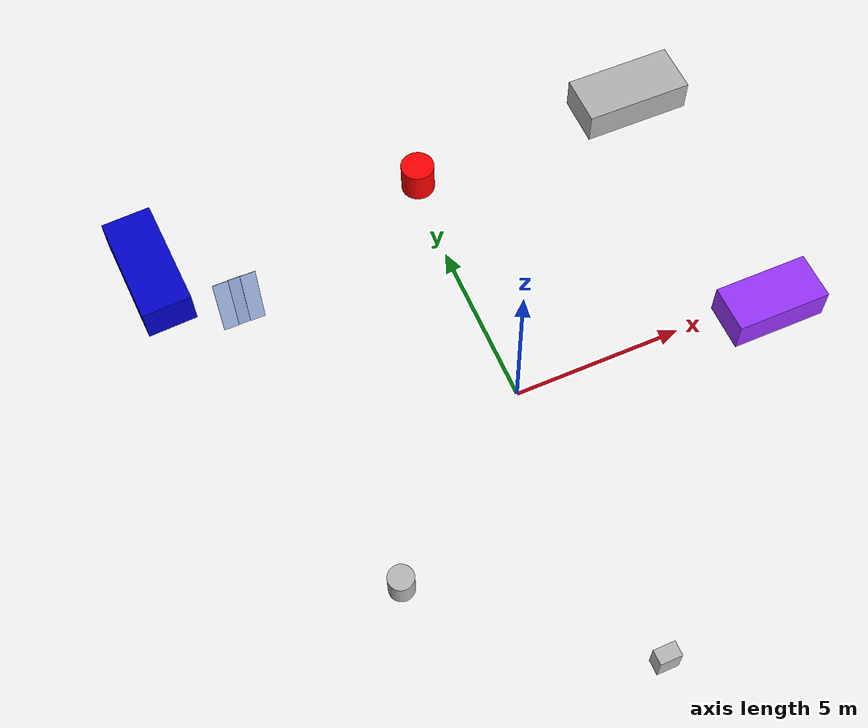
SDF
<?xml version="1.0" ?>
<sdf version="1.6">

  <model name="hospdecor">

    <!-- Static decoration -->
    <static>true</static>

    <!-- Lift model slightly -->
    <pose>0 0 0.5 0 0 0</pose>

    <!-- ================= BLOCK 1 ================= -->
    <link name="block_1">
      <pose>7.66 -0.43 0 0 0 0</pose>
      <visual name="visual">
        <geometry>
          <box><size>2.8 1.4 1</size></box>
        </geometry>
        <material>
          <ambient>0.6 0.2 1 1</ambient>
          <diffuse>0.6 0.2 1 1</diffuse>
        </material>
      </visual>
      <collision name="collision">
        <geometry>
          <box><size>2.8 1.4 1</size></box>
        </geometry>
      </collision>
    </link>

    <!-- ================= BLOCK 2 ================= -->
    <link name="block_2">
      <pose>-8.14 7.59 0 0 0 1.62</pose>
      <visual name="visual">
        <geometry>
          <box><size>3.4 1.45 1.1</size></box>
        </geometry>
        <material>
          <ambient>0 0 0.8 1</ambient>
          <diffuse>0 0 0.8 1</diffuse>
        </material>
      </visual>
      <collision name="collision">
        <geometry>
          <box><size>3.4 1.45 1.1</size></box>
        </geometry>
      </collision>
    </link>

    <!-- ================= BLOCK 3 ================= -->
    <link name="block_3">
      <pose>7.38 7.89 0 0 0 0</pose>
      <visual name="visual">
        <geometry>
          <box><size>3.3 1.56 1</size></box>
        </geometry>
        <material>
          <ambient>0.7 0.7 0.7 1</ambient>
          <diffuse>0.7 0.7 0.7 1</diffuse>
        </material>
      </visual>
      <collision name="collision">
        <geometry>
          <box><size>3.3 1.56 1</size></box>
        </geometry>
      </collision>
    </link>

    <!-- ================= RED CYLINDER ================= -->
    <link name="red_object">
      <pose>0.23 7.61 0 0 0 0</pose>
      <visual name="visual">
        <geometry>
          <cylinder>
            <radius>0.5</radius>
            <length>1</length>
          </cylinder>
        </geometry>
        <material>
          <ambient>1 0 0 1</ambient>
          <diffuse>1 0 0 1</diffuse>
        </material>
      </visual>
      <collision name="collision">
        <geometry>
          <cylinder>
            <radius>0.5</radius>
            <length>1</length>
          </cylinder>
        </geometry>
      </collision>
    </link>

    <!-- ================= MAILBOX ================= -->
    <link name="mailbox">
      <pose>0 -8.5 0.6 0 0 0</pose>
      <visual name="visual">
        <geometry>
          <box><size>0.6 0.4 0.8</size></box>
        </geometry>
      </visual>
      <collision name="collision">
        <geometry>
          <box><size>0.6 0.4 0.8</size></box>
        </geometry>
      </collision>
    </link>

    <!-- ================= TRASH CAN ================= -->
    <link name="trash_can">
      <pose>-5.15 -4.17 0.6 0 0 0</pose>
      <visual name="visual">
        <geometry>
          <cylinder>
            <radius>0.35</radius>
            <length>0.8</length>
          </cylinder>
        </geometry>
      </visual>
      <collision name="collision">
        <geometry>
          <cylinder>
            <radius>0.35</radius>
            <length>0.8</length>
          </cylinder>
        </geometry>
      </collision>
    </link>

<!-- ================= CURTAIN (FABRIC, NOT GLASS) ================= -->

<!-- Fold 1 -->
<link name="curtain_fold_1">
  <pose>-5.7 5.6 0 0 0 0</pose>
  <visual name="curtain_visual_1">
    <geometry>
      <box>
        <size>0.45 0.01 2.4</size>
      </box>
    </geometry>
    <material>
      <ambient>0.7 0.8 1.0 1</ambient>
      <diffuse>0.7 0.8 1.0 1</diffuse>
      <specular>0.01 0.01 0.01 1</specular>
    </material>
  </visual>
</link>

<!-- Fold 2 -->
<link name="curtain_fold_2">
  <pose>-6.05 5.61 0 0 0 0</pose>
  <visual name="curtain_visual_2">
    <geometry>
      <box>
        <size>0.45 0.01 2.4</size>
      </box>
    </geometry>
    <material>
      <ambient>0.65 0.75 0.95 1</ambient>
      <diffuse>0.65 0.75 0.95 1</diffuse>
      <specular>0.01 0.01 0.01 1</specular>
    </material>
  </visual>
</link>

<!-- Fold 3 -->
<link name="curtain_fold_3">
  <pose>-6.5 5.6 0 0 0 0</pose>
  <visual name="curtain_visual_3">
    <geometry>
      <box>
        <size>0.45 0.01 2.4</size>
      </box>
    </geometry>
    <material>
      <ambient>0.7 0.8 1.0 1</ambient>
      <diffuse>0.7 0.8 1.0 1</diffuse>
      <specular>0.01 0.01 0.01 1</specular>
    </material>
  </visual>
</link>

<!-- NO COLLISION: robot passes through -->

  </model>
</sdf>
